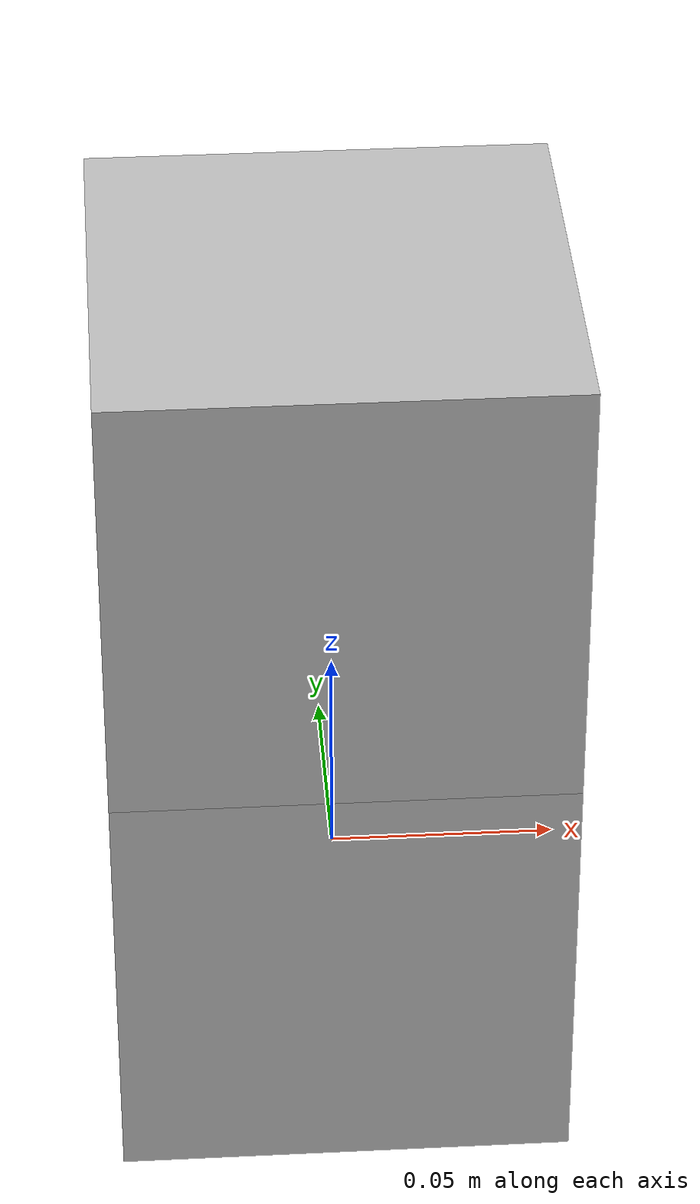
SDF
<?xml version='1.0'?>
<sdf version='1.6'>
		<model name="PP">
			<self_collide>true</self_collide>
			<pose>0.0 0.0 0.0 0.0 0.0 0.0</pose>
			<!-- Start of parts of the pmodel PP -->
				<!-- Start of declarations for part "PP::p1" -->
					<!-- Start of parts of part "PP::p1" -->
					<!-- End of parts of part "PP::p1" -->

					<!-- Start of links of part "PP::p1" -->
					<!-- link full name is PP::p1::L1 -->
					<link name="1-L1">
							<pose>0.0 0.0 0.0 0.0 0.0 0.0</pose>
							<inertial>
								<pose>0.0 0.0 0.0 0.0 0.0 0.0</pose>
								<inertia>
									<ixx>1.0</ixx>
									<ixy>0.0</ixy>
									<ixz>0.0</ixz>
									<iyy>1.0</iyy>
									<iyz>0.0</iyz>
									<izz>1.0</izz>
								</inertia>
								<mass>1.0</mass>
							</inertial>
							<!-- body full name is PP::p1::L1::B -->
							<collision name="1--B">
								<laser_retro>0.0</laser_retro>
								<pose>0.0 0.0 0.0 0.0 0.0 0.0</pose>
								<geometry>
									<box>
										<size>0.10000000149011612 0.10000000149011612 0.10000000149011612</size>
									</box>
								</geometry>
								<surface>
									<bounce>
										<restitution_coefficient>0.0</restitution_coefficient>
										<threshold>100000.0</threshold>
									</bounce>
									<friction>
										<ode>
											<mu>1.0</mu>
											<mu2>1.0</mu2>
											<fdir1>0.0 0.0 0.0</fdir1>
											<slip1>0.0</slip1>
											<slip2>0.0</slip2>
										</ode>
										<torsional>
											<coefficient>1.0</coefficient>
											<surface_radius>0.0</surface_radius>
										</torsional>
									</friction>
								</surface>
							</collision>
							<visual name="1--B">
								<laser_retro>0.0</laser_retro>
								<pose>0.0 0.0 0.0 0.0 0.0 0.0</pose>
								<geometry>
									<box>
										<size>0.10000000149011612 0.10000000149011612 0.10000000149011612</size>
									</box>
								</geometry>
								<surface>
									<bounce>
										<restitution_coefficient>0.0</restitution_coefficient>
										<threshold>100000.0</threshold>
									</bounce>
									<friction>
										<ode>
											<mu>1.0</mu>
											<mu2>1.0</mu2>
											<fdir1>0.0 0.0 0.0</fdir1>
											<slip1>0.0</slip1>
											<slip2>0.0</slip2>
										</ode>
										<torsional>
											<coefficient>1.0</coefficient>
											<surface_radius>0.0</surface_radius>
										</torsional>
									</friction>
								</surface>
							</visual>
					</link>
					<!-- End of links of part "PP::p1" -->

					<!-- Start of joints of part "PP::p1" -->
					<!-- Full name of joint: PP::p1::L1::R from PP::p1::L1 to PP::p2::L2-->
					<joint name="3-R" type="revolute">
						<pose>0.0 0.0 -0.10000000149011612 0.0 -0.0 0.0</pose>
						<parent>1-L1</parent>
						<child>2-L2</child>
						<!-- WARNING: The SDF generator relies on annotations of the joint 3-R to specify in SDF aspects of the joint that are
							 accounted for in the equations. -->
						<axis>
							<xyz>0 0 1</xyz>
						</axis>
					</joint>
					<!-- End of joints of part "PP::p1" -->

					<!-- Start of fixed connections of part "PP::p1" -->

					<!-- End of fixed connections of part "PP::p1" -->
				<!-- End of declarations for part "PP::p1" -->
				<!-- Start of declarations for part "PP::p2" -->
					<!-- Start of parts of part "PP::p2" -->
					<!-- End of parts of part "PP::p2" -->

					<!-- Start of links of part "PP::p2" -->
					<!-- link full name is PP::p2::L2 -->
					<link name="2-L2">
							<pose>0.0 0.0 0.10000000149011612 0.0 0.0 0.0</pose>
							<inertial>
								<pose>0.0 0.0 0.0 0.0 0.0 0.0</pose>
								<inertia>
									<ixx>1.0</ixx>
									<ixy>0.0</ixy>
									<ixz>0.0</ixz>
									<iyy>1.0</iyy>
									<iyz>0.0</iyz>
									<izz>1.0</izz>
								</inertia>
								<mass>1.0</mass>
							</inertial>
							<!-- body full name is PP::p2::L2::B -->
							<collision name="2--B">
								<laser_retro>0.0</laser_retro>
								<pose>0.0 0.0 0.0 0.0 0.0 0.0</pose>
								<geometry>
									<box>
										<size>0.10000000149011612 0.10000000149011612 0.10000000149011612</size>
									</box>
								</geometry>
								<surface>
									<bounce>
										<restitution_coefficient>0.0</restitution_coefficient>
										<threshold>100000.0</threshold>
									</bounce>
									<friction>
										<ode>
											<mu>1.0</mu>
											<mu2>1.0</mu2>
											<fdir1>0.0 0.0 0.0</fdir1>
											<slip1>0.0</slip1>
											<slip2>0.0</slip2>
										</ode>
										<torsional>
											<coefficient>1.0</coefficient>
											<surface_radius>0.0</surface_radius>
										</torsional>
									</friction>
								</surface>
							</collision>
							<visual name="2--B">
								<laser_retro>0.0</laser_retro>
								<pose>0.0 0.0 0.0 0.0 0.0 0.0</pose>
								<geometry>
									<box>
										<size>0.10000000149011612 0.10000000149011612 0.10000000149011612</size>
									</box>
								</geometry>
								<surface>
									<bounce>
										<restitution_coefficient>0.0</restitution_coefficient>
										<threshold>100000.0</threshold>
									</bounce>
									<friction>
										<ode>
											<mu>1.0</mu>
											<mu2>1.0</mu2>
											<fdir1>0.0 0.0 0.0</fdir1>
											<slip1>0.0</slip1>
											<slip2>0.0</slip2>
										</ode>
										<torsional>
											<coefficient>1.0</coefficient>
											<surface_radius>0.0</surface_radius>
										</torsional>
									</friction>
								</surface>
							</visual>
					</link>
					<!-- End of links of part "PP::p2" -->

					<!-- Start of joints of part "PP::p2" -->
					<!-- End of joints of part "PP::p2" -->

					<!-- Start of fixed connections of part "PP::p2" -->

					<!-- End of fixed connections of part "PP::p2" -->
				<!-- End of declarations for part "PP::p2" -->
			<!-- End of parts of the pmodel PP -->

			<!-- Start of links of the pmodel PP -->
			<!-- End of links of the pmodel PP -->

			<!-- Start of joints of the pmodel PP -->
			<!-- End of joints of the pmodel PP -->

			<!-- Start of fixed connections of the pmodel PP -->
			<!-- End of fixed connections of the pmodel PP -->
		</model>
</sdf>
